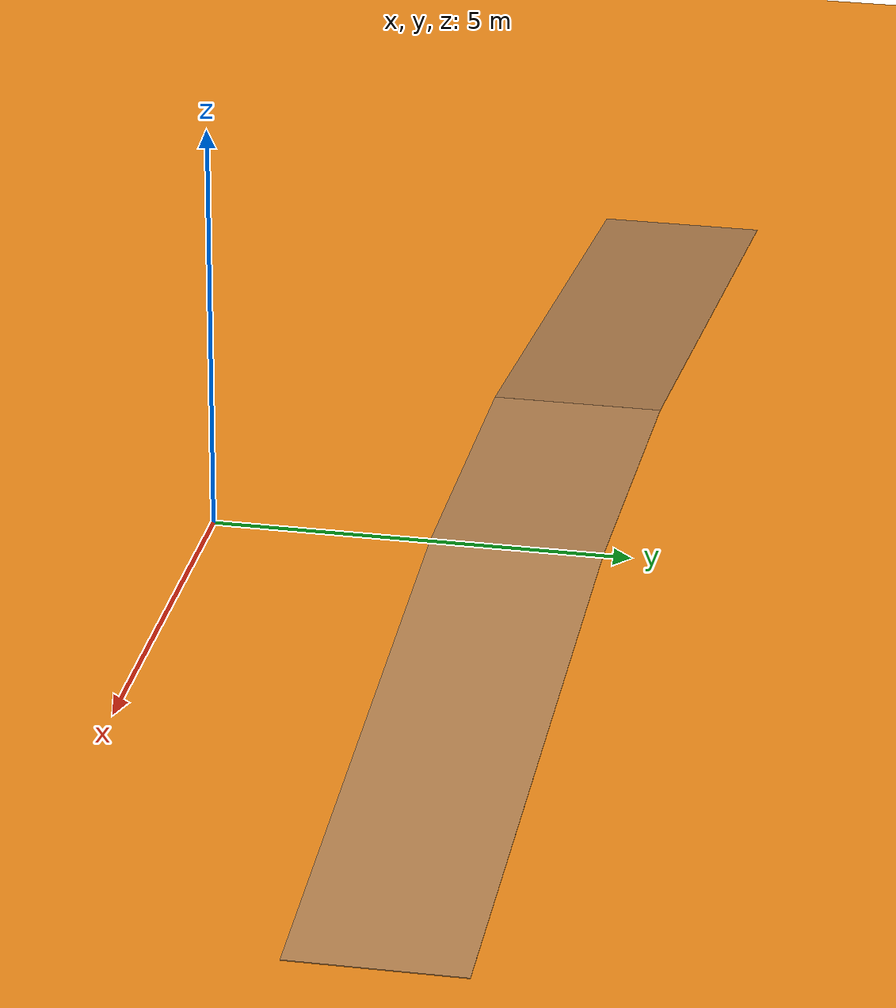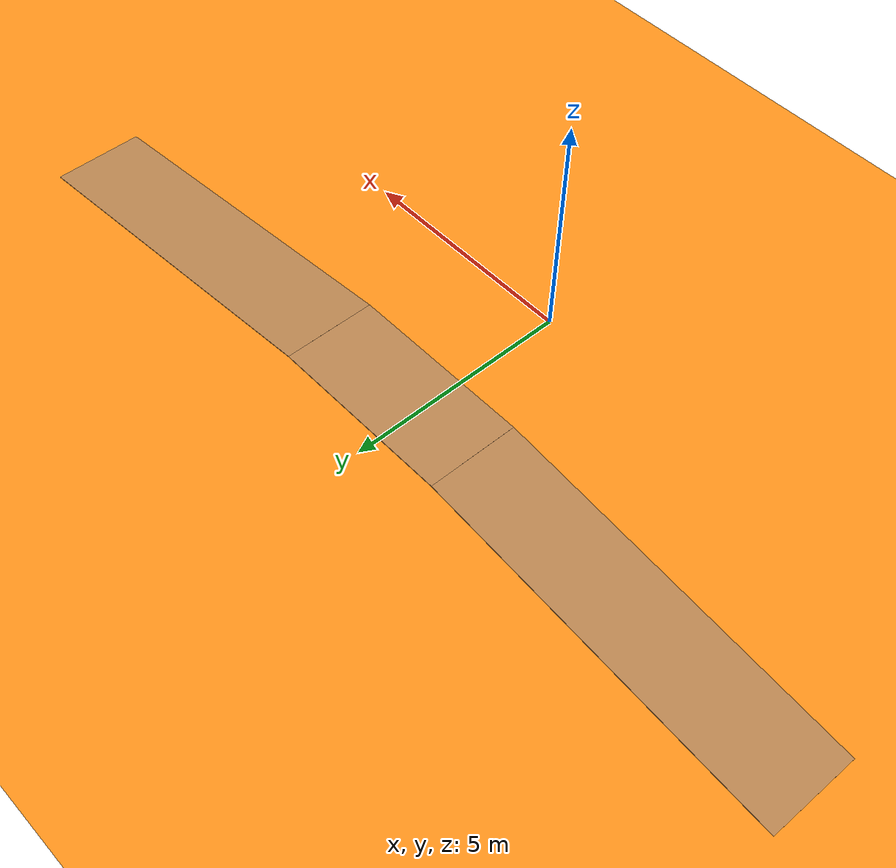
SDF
<sdf version="1.4">
 <world name="default">
  <physics type="ode">
   <gravity>0.000000 0.000000 -9.810000</gravity>
   <ode>
    <solver><type>quick</type><iters>20</iters><sor>1.000000</sor></solver>
    <constraints>
     <cfm>0.000000</cfm>
     <erp>0.200000</erp>
     <contact_max_correcting_vel>100.000000</contact_max_correcting_vel>
     <contact_surface_layer>0.000000</contact_surface_layer>
    </constraints>
   </ode>
   <real_time_update_rate>1000.000000</real_time_update_rate>
   <max_step_size>0.001000</max_step_size>
   <real_time_factor>1.000000</real_time_factor>
   <max_contacts>20</max_contacts>
  </physics>
  <light name="sun" type="directional">
   <pose>0.000000 0.000000 10.000000 0.000000 0.000000 0.000000</pose>
   <diffuse>0.800000 0.800000 0.800000 1.000000</diffuse>
   <specular>0.200000 0.200000 0.200000 1.000000</specular>
   <attenuation>
    <range>1000.000000</range>
    <constant>0.900000</constant>
    <linear>0.010000</linear>
    <quadratic>0.001000</quadratic>
   </attenuation>
   <direction>0.500000 0.100000 -0.900000</direction>
  </light>
  <model name="ground_plane">
   <static>1</static>
   <link name="link">
    <collision name="collision">
     <geometry>
      <plane><normal>0.000000 0.000000 1.000000</normal><size>100.000000 100.000000</size></plane>
     </geometry>
     <surface><friction><ode><mu>100.000000</mu><mu2>50.000000</mu2></ode></friction></surface>
    </collision>
    <visual name="visual">
     <cast_shadows>0</cast_shadows>
     <geometry>
      <plane><normal>0.000000 0.000000 1.000000</normal><size>100.000000 100.000000</size></plane>
     </geometry>
     <material>
      <script><uri>file://media/materials/scripts/gazebo.material</uri><name>Gazebo/Orange</name></script>
     </material>
    </visual>
    <velocity_decay><linear>0.000000</linear><angular>0.000000</angular></velocity_decay>
   </link>
  </model>
  <scene>
   <ambient>0.200000 0.200000 0.200000 1.000000</ambient>
   <background>0.700000 0.700000 0.700000 1.000000</background>
   <shadows>1</shadows>
  </scene>
  <model name="ramp">
   <static>1</static>
   <link name="ramp_link">
    <collision name="ramp_up_collision">
     <pose>0.000000 0.000000 0.500000 0.000000 0.124355 0.000000</pose>
     <geometry><box><size>8.062260 2.000000 0.010000</size></box></geometry>
    </collision>
    <visual name="ramp_up_visual">
     <pose>0.000000 0.000000 0.500000 0.000000 0.124355 0.000000</pose>
     <geometry><box><size>8.062258 2.000000 0.010000</size></box></geometry>
     <material>
      <script><uri>file://media/materials/scripts/gazebo.material</uri><name>Gazebo/Wood</name></script>
     </material>
     <cast_shadows>0</cast_shadows>
    </visual>
    <collision name="plane_collision">
     <pose>-6.000000 0.000000 1.000000 0.000000 0.000000 0.000000</pose>
     <geometry><box><size>4.000000 2.000000 0.010000</size></box></geometry>
    </collision>
    <visual name="plane_visual">
     <pose>-6.000000 0.000000 1.000000 0.000000 0.000000 0.000000</pose>
     <geometry><box><size>4.000000 2.000000 0.010000</size></box></geometry>
     <material>
      <script><uri>file://media/materials/scripts/gazebo.material</uri><name>Gazebo/Wood</name></script>
     </material>
     <cast_shadows>0</cast_shadows>
    </visual>
    <collision name="ramp_down_collision">
     <pose>-12.000000 0.000000 0.500000 0.000000 -0.124355 0.000000</pose>
     <geometry><box><size>8.062260 2.000000 0.010000</size></box></geometry>
    </collision>
    <visual name="ramp_down_visual">
     <pose>-12.000000 0.000000 0.500000 0.000000 -0.124355 0.000000</pose>
     <geometry><box><size>8.062258 2.000000 0.010000</size></box></geometry>
     <material>
      <script><uri>file://media/materials/scripts/gazebo.material</uri><name>Gazebo/Wood</name></script>
     </material>
     <cast_shadows>0</cast_shadows>
    </visual>
    <velocity_decay><linear>0.000000</linear><angular>0.000000</angular></velocity_decay>
   </link>
   <pose>6.000000 4.000000 0.000000 0.000000 0.000000 0.000000</pose>
  </model>
 </world>
</sdf>
